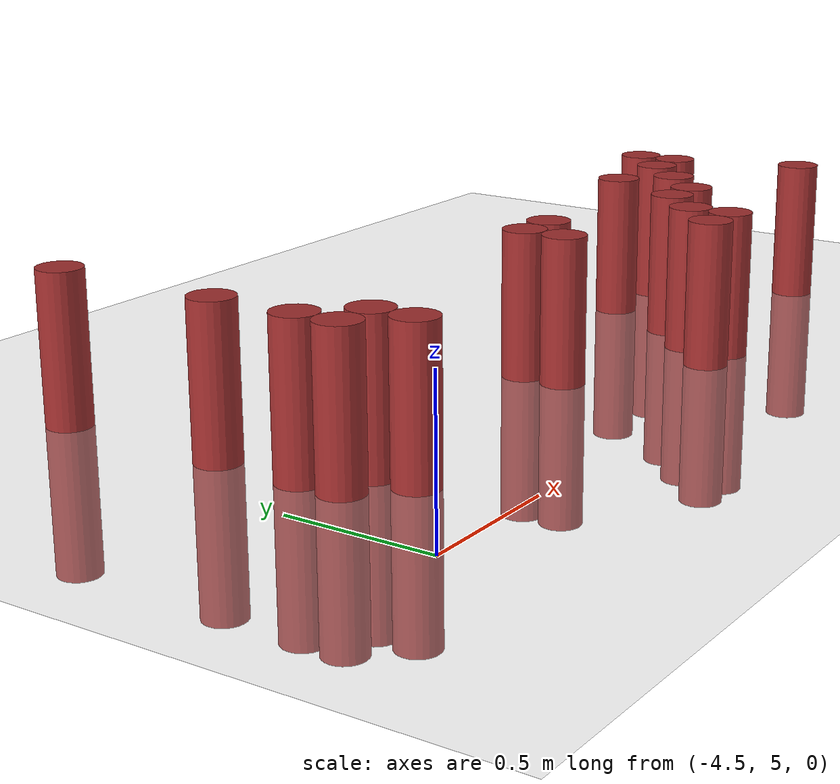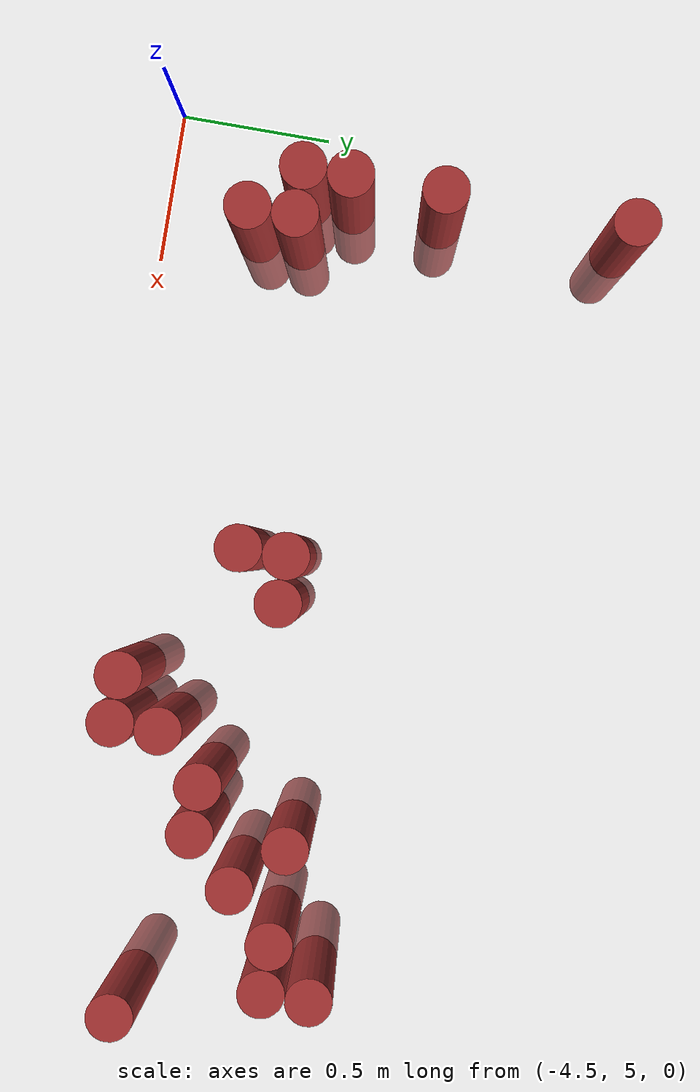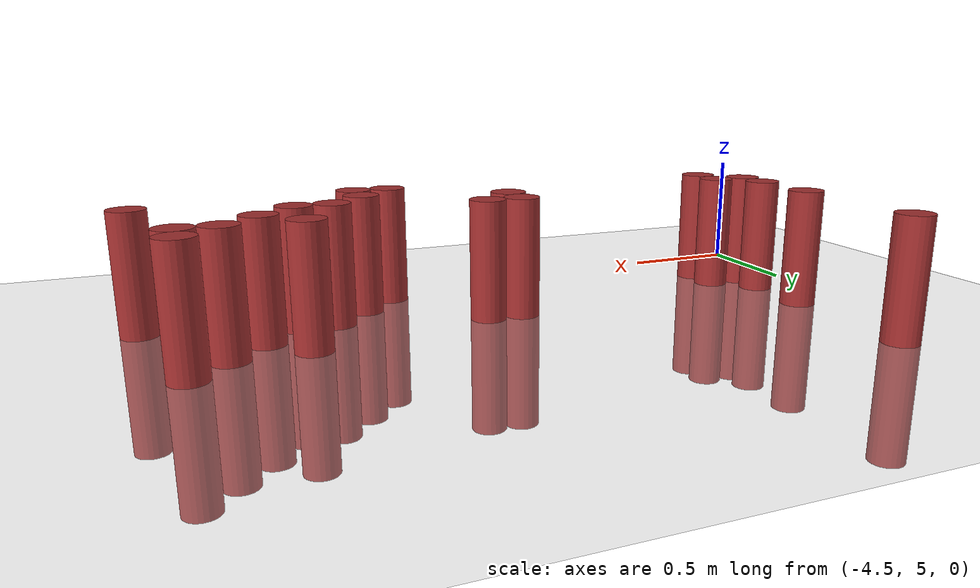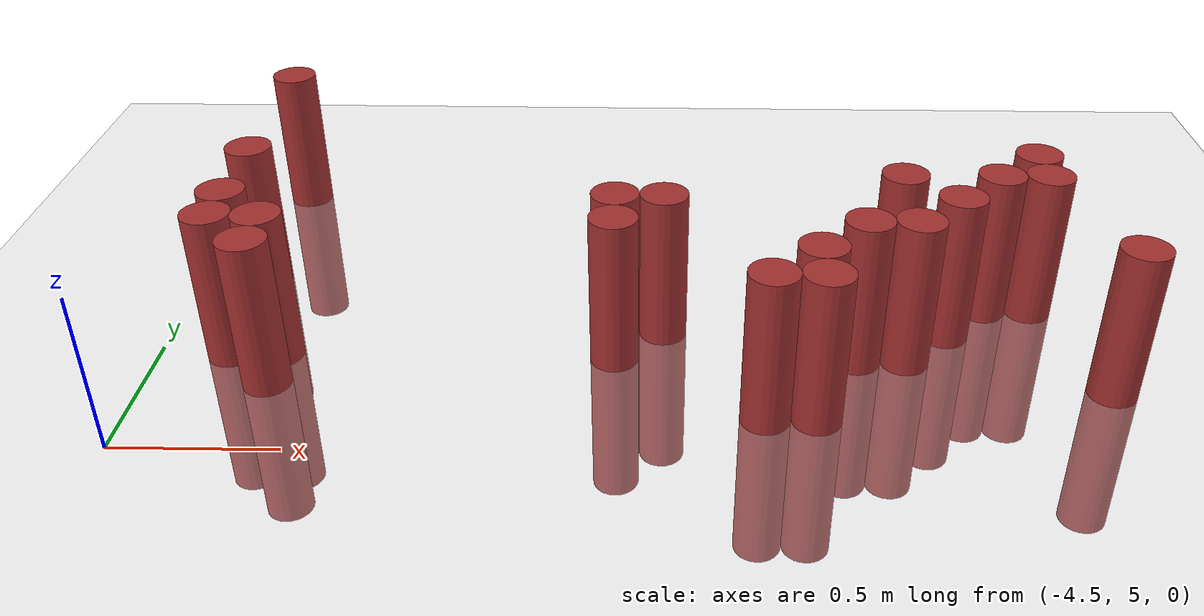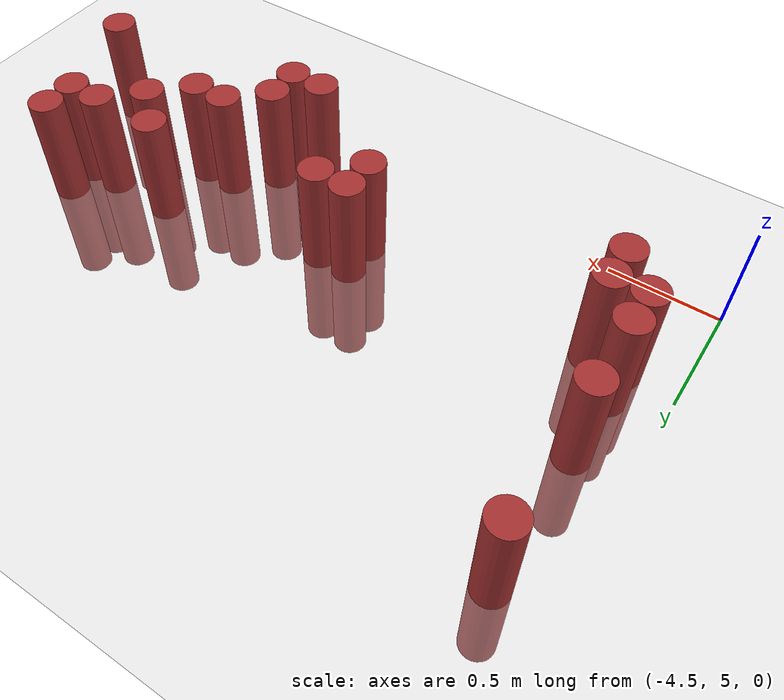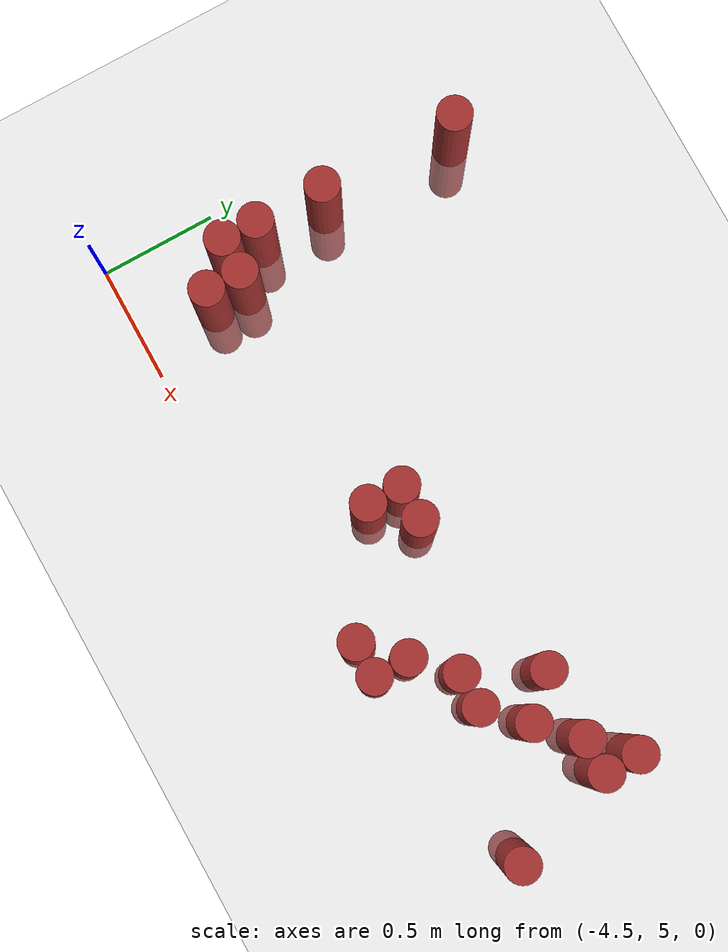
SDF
<sdf version="1.6">
 <world name="default">
  <model name="ground_plane">
   <static>1</static>
   <link name="link">
    <collision name="collision">
     <geometry><plane><normal>0 0 1</normal><size>100 100</size></plane></geometry>
     <surface><friction><ode><mu>100</mu><mu2>50</mu2></ode></friction></surface>
    </collision>
    <visual name="visual">
     <cast_shadows>0</cast_shadows>
     <geometry><plane><normal>0 0 1</normal><size>100 100</size></plane></geometry>
     <material>
      <script><uri>file://media/materials/scripts/gazebo.material</uri><name>Gazebo/Grey</name></script>
     </material>
    </visual>
   </link>
  </model>
  <model name="unit_cylinder_128">
   <static>1</static>
   <pose>-4.275000 5.475000 0.000000 0.000000 0.000000 0.000000</pose>
   <link name="link">
    <inertial>
     <mass>1</mass>
     <inertia><ixx>0.145833</ixx><ixy>0</ixy><ixz>0</ixz><iyy>0.145833</iyy><iyz>0</iyz><izz>0.125</izz></inertia>
    </inertial>
    <collision name="collision">
     <geometry><cylinder><radius>0.075000</radius><length>1</length></cylinder></geometry>
    </collision>
    <visual name="visual">
     <geometry><cylinder><radius>0.075000</radius><length>1</length></cylinder></geometry>
     <material>
      <ambient>0.648000 0.192000 0.192000 1</ambient>
      <diffuse>0.648000 0.192000 0.192000 1</diffuse>
     </material>
     <material>
      <script><name>Gazebo/Grey</name><uri>file://media/materials/scripts/gazebo.material</uri></script>
     </material>
    </visual>
    <sensor name="sensor_contact" type="contact"><contact><collision>collision</collision></contact></sensor>
   </link>
   <plugin filename="gz-sim-touchplugin-system" name="gz::sim::systems::TouchPlugin">
    <target>robot</target>
    <namespace>robot</namespace>
    <time>0.001</time>
    <enabled>true</enabled>
   </plugin>
  </model>
  <model name="unit_cylinder_129">
   <static>1</static>
   <pose>-4.275000 5.625000 0.000000 0.000000 0.000000 0.000000</pose>
   <link name="link">
    <inertial>
     <mass>1</mass>
     <inertia><ixx>0.145833</ixx><ixy>0</ixy><ixz>0</ixz><iyy>0.145833</iyy><iyz>0</iyz><izz>0.125</izz></inertia>
    </inertial>
    <collision name="collision">
     <geometry><cylinder><radius>0.075000</radius><length>1</length></cylinder></geometry>
    </collision>
    <visual name="visual">
     <geometry><cylinder><radius>0.075000</radius><length>1</length></cylinder></geometry>
     <material>
      <ambient>0.648000 0.192000 0.192000 1</ambient>
      <diffuse>0.648000 0.192000 0.192000 1</diffuse>
     </material>
     <material>
      <script><name>Gazebo/Grey</name><uri>file://media/materials/scripts/gazebo.material</uri></script>
     </material>
    </visual>
    <sensor name="sensor_contact" type="contact"><contact><collision>collision</collision></contact></sensor>
   </link>
   <plugin filename="gz-sim-touchplugin-system" name="gz::sim::systems::TouchPlugin">
    <target>robot</target>
    <namespace>robot</namespace>
    <time>0.001</time>
    <enabled>true</enabled>
   </plugin>
  </model>
  <model name="unit_cylinder_130">
   <static>1</static>
   <pose>-4.275000 5.925000 0.000000 0.000000 0.000000 0.000000</pose>
   <link name="link">
    <inertial>
     <mass>1</mass>
     <inertia><ixx>0.145833</ixx><ixy>0</ixy><ixz>0</ixz><iyy>0.145833</iyy><iyz>0</iyz><izz>0.125</izz></inertia>
    </inertial>
    <collision name="collision">
     <geometry><cylinder><radius>0.075000</radius><length>1</length></cylinder></geometry>
    </collision>
    <visual name="visual">
     <geometry><cylinder><radius>0.075000</radius><length>1</length></cylinder></geometry>
     <material>
      <ambient>0.648000 0.192000 0.192000 1</ambient>
      <diffuse>0.648000 0.192000 0.192000 1</diffuse>
     </material>
     <material>
      <script><name>Gazebo/Grey</name><uri>file://media/materials/scripts/gazebo.material</uri></script>
     </material>
    </visual>
    <sensor name="sensor_contact" type="contact"><contact><collision>collision</collision></contact></sensor>
   </link>
   <plugin filename="gz-sim-touchplugin-system" name="gz::sim::systems::TouchPlugin">
    <target>robot</target>
    <namespace>robot</namespace>
    <time>0.001</time>
    <enabled>true</enabled>
   </plugin>
  </model>
  <model name="unit_cylinder_131">
   <static>1</static>
   <pose>-4.275000 6.525000 0.000000 0.000000 0.000000 0.000000</pose>
   <link name="link">
    <inertial>
     <mass>1</mass>
     <inertia><ixx>0.145833</ixx><ixy>0</ixy><ixz>0</ixz><iyy>0.145833</iyy><iyz>0</iyz><izz>0.125</izz></inertia>
    </inertial>
    <collision name="collision">
     <geometry><cylinder><radius>0.075000</radius><length>1</length></cylinder></geometry>
    </collision>
    <visual name="visual">
     <geometry><cylinder><radius>0.075000</radius><length>1</length></cylinder></geometry>
     <material>
      <ambient>0.648000 0.192000 0.192000 1</ambient>
      <diffuse>0.648000 0.192000 0.192000 1</diffuse>
     </material>
     <material>
      <script><name>Gazebo/Grey</name><uri>file://media/materials/scripts/gazebo.material</uri></script>
     </material>
    </visual>
    <sensor name="sensor_contact" type="contact"><contact><collision>collision</collision></contact></sensor>
   </link>
   <plugin filename="gz-sim-touchplugin-system" name="gz::sim::systems::TouchPlugin">
    <target>robot</target>
    <namespace>robot</namespace>
    <time>0.001</time>
    <enabled>true</enabled>
   </plugin>
  </model>
  <model name="unit_cylinder_142">
   <static>1</static>
   <pose>-4.125000 5.325000 0.000000 0.000000 0.000000 0.000000</pose>
   <link name="link">
    <inertial>
     <mass>1</mass>
     <inertia><ixx>0.145833</ixx><ixy>0</ixy><ixz>0</ixz><iyy>0.145833</iyy><iyz>0</iyz><izz>0.125</izz></inertia>
    </inertial>
    <collision name="collision">
     <geometry><cylinder><radius>0.075000</radius><length>1</length></cylinder></geometry>
    </collision>
    <visual name="visual">
     <geometry><cylinder><radius>0.075000</radius><length>1</length></cylinder></geometry>
     <material>
      <ambient>0.648000 0.192000 0.192000 1</ambient>
      <diffuse>0.648000 0.192000 0.192000 1</diffuse>
     </material>
     <material>
      <script><name>Gazebo/Grey</name><uri>file://media/materials/scripts/gazebo.material</uri></script>
     </material>
    </visual>
    <sensor name="sensor_contact" type="contact"><contact><collision>collision</collision></contact></sensor>
   </link>
   <plugin filename="gz-sim-touchplugin-system" name="gz::sim::systems::TouchPlugin">
    <target>robot</target>
    <namespace>robot</namespace>
    <time>0.001</time>
    <enabled>true</enabled>
   </plugin>
  </model>
  <model name="unit_cylinder_143">
   <static>1</static>
   <pose>-4.125000 5.475000 0.000000 0.000000 0.000000 0.000000</pose>
   <link name="link">
    <inertial>
     <mass>1</mass>
     <inertia><ixx>0.145833</ixx><ixy>0</ixy><ixz>0</ixz><iyy>0.145833</iyy><iyz>0</iyz><izz>0.125</izz></inertia>
    </inertial>
    <collision name="collision">
     <geometry><cylinder><radius>0.075000</radius><length>1</length></cylinder></geometry>
    </collision>
    <visual name="visual">
     <geometry><cylinder><radius>0.075000</radius><length>1</length></cylinder></geometry>
     <material>
      <ambient>0.648000 0.192000 0.192000 1</ambient>
      <diffuse>0.648000 0.192000 0.192000 1</diffuse>
     </material>
     <material>
      <script><name>Gazebo/Grey</name><uri>file://media/materials/scripts/gazebo.material</uri></script>
     </material>
    </visual>
    <sensor name="sensor_contact" type="contact"><contact><collision>collision</collision></contact></sensor>
   </link>
   <plugin filename="gz-sim-touchplugin-system" name="gz::sim::systems::TouchPlugin">
    <target>robot</target>
    <namespace>robot</namespace>
    <time>0.001</time>
    <enabled>true</enabled>
   </plugin>
  </model>
  <model name="unit_cylinder_185">
   <static>1</static>
   <pose>-3.075000 5.475000 0.000000 0.000000 0.000000 0.000000</pose>
   <link name="link">
    <inertial>
     <mass>1</mass>
     <inertia><ixx>0.145833</ixx><ixy>0</ixy><ixz>0</ixz><iyy>0.145833</iyy><iyz>0</iyz><izz>0.125</izz></inertia>
    </inertial>
    <collision name="collision">
     <geometry><cylinder><radius>0.075000</radius><length>1</length></cylinder></geometry>
    </collision>
    <visual name="visual">
     <geometry><cylinder><radius>0.075000</radius><length>1</length></cylinder></geometry>
     <material>
      <ambient>0.648000 0.192000 0.192000 1</ambient>
      <diffuse>0.648000 0.192000 0.192000 1</diffuse>
     </material>
     <material>
      <script><name>Gazebo/Grey</name><uri>file://media/materials/scripts/gazebo.material</uri></script>
     </material>
    </visual>
    <sensor name="sensor_contact" type="contact"><contact><collision>collision</collision></contact></sensor>
   </link>
   <plugin filename="gz-sim-touchplugin-system" name="gz::sim::systems::TouchPlugin">
    <target>robot</target>
    <namespace>robot</namespace>
    <time>0.001</time>
    <enabled>true</enabled>
   </plugin>
  </model>
  <model name="unit_cylinder_186">
   <static>1</static>
   <pose>-3.075000 5.625000 0.000000 0.000000 0.000000 0.000000</pose>
   <link name="link">
    <inertial>
     <mass>1</mass>
     <inertia><ixx>0.145833</ixx><ixy>0</ixy><ixz>0</ixz><iyy>0.145833</iyy><iyz>0</iyz><izz>0.125</izz></inertia>
    </inertial>
    <collision name="collision">
     <geometry><cylinder><radius>0.075000</radius><length>1</length></cylinder></geometry>
    </collision>
    <visual name="visual">
     <geometry><cylinder><radius>0.075000</radius><length>1</length></cylinder></geometry>
     <material>
      <ambient>0.648000 0.192000 0.192000 1</ambient>
      <diffuse>0.648000 0.192000 0.192000 1</diffuse>
     </material>
     <material>
      <script><name>Gazebo/Grey</name><uri>file://media/materials/scripts/gazebo.material</uri></script>
     </material>
    </visual>
    <sensor name="sensor_contact" type="contact"><contact><collision>collision</collision></contact></sensor>
   </link>
   <plugin filename="gz-sim-touchplugin-system" name="gz::sim::systems::TouchPlugin">
    <target>robot</target>
    <namespace>robot</namespace>
    <time>0.001</time>
    <enabled>true</enabled>
   </plugin>
  </model>
  <model name="unit_cylinder_187">
   <static>1</static>
   <pose>-2.925000 5.625000 0.000000 0.000000 0.000000 0.000000</pose>
   <link name="link">
    <inertial>
     <mass>1</mass>
     <inertia><ixx>0.145833</ixx><ixy>0</ixy><ixz>0</ixz><iyy>0.145833</iyy><iyz>0</iyz><izz>0.125</izz></inertia>
    </inertial>
    <collision name="collision">
     <geometry><cylinder><radius>0.075000</radius><length>1</length></cylinder></geometry>
    </collision>
    <visual name="visual">
     <geometry><cylinder><radius>0.075000</radius><length>1</length></cylinder></geometry>
     <material>
      <ambient>0.648000 0.192000 0.192000 1</ambient>
      <diffuse>0.648000 0.192000 0.192000 1</diffuse>
     </material>
     <material>
      <script><name>Gazebo/Grey</name><uri>file://media/materials/scripts/gazebo.material</uri></script>
     </material>
    </visual>
    <sensor name="sensor_contact" type="contact"><contact><collision>collision</collision></contact></sensor>
   </link>
   <plugin filename="gz-sim-touchplugin-system" name="gz::sim::systems::TouchPlugin">
    <target>robot</target>
    <namespace>robot</namespace>
    <time>0.001</time>
    <enabled>true</enabled>
   </plugin>
  </model>
  <model name="unit_cylinder_188">
   <static>1</static>
   <pose>-2.625000 5.175000 0.000000 0.000000 0.000000 0.000000</pose>
   <link name="link">
    <inertial>
     <mass>1</mass>
     <inertia><ixx>0.145833</ixx><ixy>0</ixy><ixz>0</ixz><iyy>0.145833</iyy><iyz>0</iyz><izz>0.125</izz></inertia>
    </inertial>
    <collision name="collision">
     <geometry><cylinder><radius>0.075000</radius><length>1</length></cylinder></geometry>
    </collision>
    <visual name="visual">
     <geometry><cylinder><radius>0.075000</radius><length>1</length></cylinder></geometry>
     <material>
      <ambient>0.648000 0.192000 0.192000 1</ambient>
      <diffuse>0.648000 0.192000 0.192000 1</diffuse>
     </material>
     <material>
      <script><name>Gazebo/Grey</name><uri>file://media/materials/scripts/gazebo.material</uri></script>
     </material>
    </visual>
    <sensor name="sensor_contact" type="contact"><contact><collision>collision</collision></contact></sensor>
   </link>
   <plugin filename="gz-sim-touchplugin-system" name="gz::sim::systems::TouchPlugin">
    <target>robot</target>
    <namespace>robot</namespace>
    <time>0.001</time>
    <enabled>true</enabled>
   </plugin>
  </model>
  <model name="unit_cylinder_189">
   <static>1</static>
   <pose>-2.475000 5.175000 0.000000 0.000000 0.000000 0.000000</pose>
   <link name="link">
    <inertial>
     <mass>1</mass>
     <inertia><ixx>0.145833</ixx><ixy>0</ixy><ixz>0</ixz><iyy>0.145833</iyy><iyz>0</iyz><izz>0.125</izz></inertia>
    </inertial>
    <collision name="collision">
     <geometry><cylinder><radius>0.075000</radius><length>1</length></cylinder></geometry>
    </collision>
    <visual name="visual">
     <geometry><cylinder><radius>0.075000</radius><length>1</length></cylinder></geometry>
     <material>
      <ambient>0.648000 0.192000 0.192000 1</ambient>
      <diffuse>0.648000 0.192000 0.192000 1</diffuse>
     </material>
     <material>
      <script><name>Gazebo/Grey</name><uri>file://media/materials/scripts/gazebo.material</uri></script>
     </material>
    </visual>
    <sensor name="sensor_contact" type="contact"><contact><collision>collision</collision></contact></sensor>
   </link>
   <plugin filename="gz-sim-touchplugin-system" name="gz::sim::systems::TouchPlugin">
    <target>robot</target>
    <namespace>robot</namespace>
    <time>0.001</time>
    <enabled>true</enabled>
   </plugin>
  </model>
  <model name="unit_cylinder_190">
   <static>1</static>
   <pose>-2.475000 5.325000 0.000000 0.000000 0.000000 0.000000</pose>
   <link name="link">
    <inertial>
     <mass>1</mass>
     <inertia><ixx>0.145833</ixx><ixy>0</ixy><ixz>0</ixz><iyy>0.145833</iyy><iyz>0</iyz><izz>0.125</izz></inertia>
    </inertial>
    <collision name="collision">
     <geometry><cylinder><radius>0.075000</radius><length>1</length></cylinder></geometry>
    </collision>
    <visual name="visual">
     <geometry><cylinder><radius>0.075000</radius><length>1</length></cylinder></geometry>
     <material>
      <ambient>0.648000 0.192000 0.192000 1</ambient>
      <diffuse>0.648000 0.192000 0.192000 1</diffuse>
     </material>
     <material>
      <script><name>Gazebo/Grey</name><uri>file://media/materials/scripts/gazebo.material</uri></script>
     </material>
    </visual>
    <sensor name="sensor_contact" type="contact"><contact><collision>collision</collision></contact></sensor>
   </link>
   <plugin filename="gz-sim-touchplugin-system" name="gz::sim::systems::TouchPlugin">
    <target>robot</target>
    <namespace>robot</namespace>
    <time>0.001</time>
    <enabled>true</enabled>
   </plugin>
  </model>
  <model name="unit_cylinder_191">
   <static>1</static>
   <pose>-2.325000 5.475000 0.000000 0.000000 0.000000 0.000000</pose>
   <link name="link">
    <inertial>
     <mass>1</mass>
     <inertia><ixx>0.145833</ixx><ixy>0</ixy><ixz>0</ixz><iyy>0.145833</iyy><iyz>0</iyz><izz>0.125</izz></inertia>
    </inertial>
    <collision name="collision">
     <geometry><cylinder><radius>0.075000</radius><length>1</length></cylinder></geometry>
    </collision>
    <visual name="visual">
     <geometry><cylinder><radius>0.075000</radius><length>1</length></cylinder></geometry>
     <material>
      <ambient>0.648000 0.192000 0.192000 1</ambient>
      <diffuse>0.648000 0.192000 0.192000 1</diffuse>
     </material>
     <material>
      <script><name>Gazebo/Grey</name><uri>file://media/materials/scripts/gazebo.material</uri></script>
     </material>
    </visual>
    <sensor name="sensor_contact" type="contact"><contact><collision>collision</collision></contact></sensor>
   </link>
   <plugin filename="gz-sim-touchplugin-system" name="gz::sim::systems::TouchPlugin">
    <target>robot</target>
    <namespace>robot</namespace>
    <time>0.001</time>
    <enabled>true</enabled>
   </plugin>
  </model>
  <model name="unit_cylinder_196">
   <static>1</static>
   <pose>-2.175000 5.475000 0.000000 0.000000 0.000000 0.000000</pose>
   <link name="link">
    <inertial>
     <mass>1</mass>
     <inertia><ixx>0.145833</ixx><ixy>0</ixy><ixz>0</ixz><iyy>0.145833</iyy><iyz>0</iyz><izz>0.125</izz></inertia>
    </inertial>
    <collision name="collision">
     <geometry><cylinder><radius>0.075000</radius><length>1</length></cylinder></geometry>
    </collision>
    <visual name="visual">
     <geometry><cylinder><radius>0.075000</radius><length>1</length></cylinder></geometry>
     <material>
      <ambient>0.648000 0.192000 0.192000 1</ambient>
      <diffuse>0.648000 0.192000 0.192000 1</diffuse>
     </material>
     <material>
      <script><name>Gazebo/Grey</name><uri>file://media/materials/scripts/gazebo.material</uri></script>
     </material>
    </visual>
    <sensor name="sensor_contact" type="contact"><contact><collision>collision</collision></contact></sensor>
   </link>
   <plugin filename="gz-sim-touchplugin-system" name="gz::sim::systems::TouchPlugin">
    <target>robot</target>
    <namespace>robot</namespace>
    <time>0.001</time>
    <enabled>true</enabled>
   </plugin>
  </model>
  <model name="unit_cylinder_197">
   <static>1</static>
   <pose>-2.175000 5.775000 0.000000 0.000000 0.000000 0.000000</pose>
   <link name="link">
    <inertial>
     <mass>1</mass>
     <inertia><ixx>0.145833</ixx><ixy>0</ixy><ixz>0</ixz><iyy>0.145833</iyy><iyz>0</iyz><izz>0.125</izz></inertia>
    </inertial>
    <collision name="collision">
     <geometry><cylinder><radius>0.075000</radius><length>1</length></cylinder></geometry>
    </collision>
    <visual name="visual">
     <geometry><cylinder><radius>0.075000</radius><length>1</length></cylinder></geometry>
     <material>
      <ambient>0.648000 0.192000 0.192000 1</ambient>
      <diffuse>0.648000 0.192000 0.192000 1</diffuse>
     </material>
     <material>
      <script><name>Gazebo/Grey</name><uri>file://media/materials/scripts/gazebo.material</uri></script>
     </material>
    </visual>
    <sensor name="sensor_contact" type="contact"><contact><collision>collision</collision></contact></sensor>
   </link>
   <plugin filename="gz-sim-touchplugin-system" name="gz::sim::systems::TouchPlugin">
    <target>robot</target>
    <namespace>robot</namespace>
    <time>0.001</time>
    <enabled>true</enabled>
   </plugin>
  </model>
  <model name="unit_cylinder_202">
   <static>1</static>
   <pose>-2.025000 5.625000 0.000000 0.000000 0.000000 0.000000</pose>
   <link name="link">
    <inertial>
     <mass>1</mass>
     <inertia><ixx>0.145833</ixx><ixy>0</ixy><ixz>0</ixz><iyy>0.145833</iyy><iyz>0</iyz><izz>0.125</izz></inertia>
    </inertial>
    <collision name="collision">
     <geometry><cylinder><radius>0.075000</radius><length>1</length></cylinder></geometry>
    </collision>
    <visual name="visual">
     <geometry><cylinder><radius>0.075000</radius><length>1</length></cylinder></geometry>
     <material>
      <ambient>0.648000 0.192000 0.192000 1</ambient>
      <diffuse>0.648000 0.192000 0.192000 1</diffuse>
     </material>
     <material>
      <script><name>Gazebo/Grey</name><uri>file://media/materials/scripts/gazebo.material</uri></script>
     </material>
    </visual>
    <sensor name="sensor_contact" type="contact"><contact><collision>collision</collision></contact></sensor>
   </link>
   <plugin filename="gz-sim-touchplugin-system" name="gz::sim::systems::TouchPlugin">
    <target>robot</target>
    <namespace>robot</namespace>
    <time>0.001</time>
    <enabled>true</enabled>
   </plugin>
  </model>
  <model name="unit_cylinder_208">
   <static>1</static>
   <pose>-1.875000 5.775000 0.000000 0.000000 0.000000 0.000000</pose>
   <link name="link">
    <inertial>
     <mass>1</mass>
     <inertia><ixx>0.145833</ixx><ixy>0</ixy><ixz>0</ixz><iyy>0.145833</iyy><iyz>0</iyz><izz>0.125</izz></inertia>
    </inertial>
    <collision name="collision">
     <geometry><cylinder><radius>0.075000</radius><length>1</length></cylinder></geometry>
    </collision>
    <visual name="visual">
     <geometry><cylinder><radius>0.075000</radius><length>1</length></cylinder></geometry>
     <material>
      <ambient>0.648000 0.192000 0.192000 1</ambient>
      <diffuse>0.648000 0.192000 0.192000 1</diffuse>
     </material>
     <material>
      <script><name>Gazebo/Grey</name><uri>file://media/materials/scripts/gazebo.material</uri></script>
     </material>
    </visual>
    <sensor name="sensor_contact" type="contact"><contact><collision>collision</collision></contact></sensor>
   </link>
   <plugin filename="gz-sim-touchplugin-system" name="gz::sim::systems::TouchPlugin">
    <target>robot</target>
    <namespace>robot</namespace>
    <time>0.001</time>
    <enabled>true</enabled>
   </plugin>
  </model>
  <model name="unit_cylinder_213">
   <static>1</static>
   <pose>-1.725000 5.775000 0.000000 0.000000 0.000000 0.000000</pose>
   <link name="link">
    <inertial>
     <mass>1</mass>
     <inertia><ixx>0.145833</ixx><ixy>0</ixy><ixz>0</ixz><iyy>0.145833</iyy><iyz>0</iyz><izz>0.125</izz></inertia>
    </inertial>
    <collision name="collision">
     <geometry><cylinder><radius>0.075000</radius><length>1</length></cylinder></geometry>
    </collision>
    <visual name="visual">
     <geometry><cylinder><radius>0.075000</radius><length>1</length></cylinder></geometry>
     <material>
      <ambient>0.648000 0.192000 0.192000 1</ambient>
      <diffuse>0.648000 0.192000 0.192000 1</diffuse>
     </material>
     <material>
      <script><name>Gazebo/Grey</name><uri>file://media/materials/scripts/gazebo.material</uri></script>
     </material>
    </visual>
    <sensor name="sensor_contact" type="contact"><contact><collision>collision</collision></contact></sensor>
   </link>
   <plugin filename="gz-sim-touchplugin-system" name="gz::sim::systems::TouchPlugin">
    <target>robot</target>
    <namespace>robot</namespace>
    <time>0.001</time>
    <enabled>true</enabled>
   </plugin>
  </model>
  <model name="unit_cylinder_214">
   <static>1</static>
   <pose>-1.725000 5.925000 0.000000 0.000000 0.000000 0.000000</pose>
   <link name="link">
    <inertial>
     <mass>1</mass>
     <inertia><ixx>0.145833</ixx><ixy>0</ixy><ixz>0</ixz><iyy>0.145833</iyy><iyz>0</iyz><izz>0.125</izz></inertia>
    </inertial>
    <collision name="collision">
     <geometry><cylinder><radius>0.075000</radius><length>1</length></cylinder></geometry>
    </collision>
    <visual name="visual">
     <geometry><cylinder><radius>0.075000</radius><length>1</length></cylinder></geometry>
     <material>
      <ambient>0.648000 0.192000 0.192000 1</ambient>
      <diffuse>0.648000 0.192000 0.192000 1</diffuse>
     </material>
     <material>
      <script><name>Gazebo/Grey</name><uri>file://media/materials/scripts/gazebo.material</uri></script>
     </material>
    </visual>
    <sensor name="sensor_contact" type="contact"><contact><collision>collision</collision></contact></sensor>
   </link>
   <plugin filename="gz-sim-touchplugin-system" name="gz::sim::systems::TouchPlugin">
    <target>robot</target>
    <namespace>robot</namespace>
    <time>0.001</time>
    <enabled>true</enabled>
   </plugin>
  </model>
  <model name="unit_cylinder_218">
   <static>1</static>
   <pose>-1.575000 5.325000 0.000000 0.000000 0.000000 0.000000</pose>
   <link name="link">
    <inertial>
     <mass>1</mass>
     <inertia><ixx>0.145833</ixx><ixy>0</ixy><ixz>0</ixz><iyy>0.145833</iyy><iyz>0</iyz><izz>0.125</izz></inertia>
    </inertial>
    <collision name="collision">
     <geometry><cylinder><radius>0.075000</radius><length>1</length></cylinder></geometry>
    </collision>
    <visual name="visual">
     <geometry><cylinder><radius>0.075000</radius><length>1</length></cylinder></geometry>
     <material>
      <ambient>0.648000 0.192000 0.192000 1</ambient>
      <diffuse>0.648000 0.192000 0.192000 1</diffuse>
     </material>
     <material>
      <script><name>Gazebo/Grey</name><uri>file://media/materials/scripts/gazebo.material</uri></script>
     </material>
    </visual>
    <sensor name="sensor_contact" type="contact"><contact><collision>collision</collision></contact></sensor>
   </link>
   <plugin filename="gz-sim-touchplugin-system" name="gz::sim::systems::TouchPlugin">
    <target>robot</target>
    <namespace>robot</namespace>
    <time>0.001</time>
    <enabled>true</enabled>
   </plugin>
  </model>
 </world>
</sdf>
